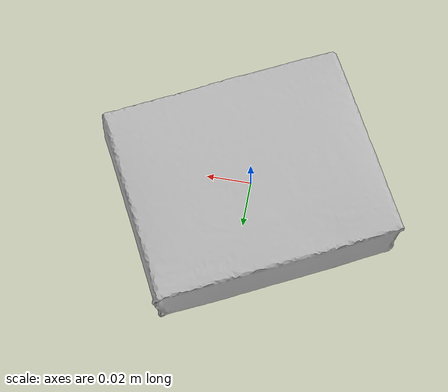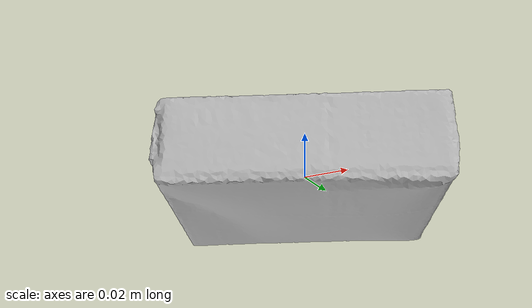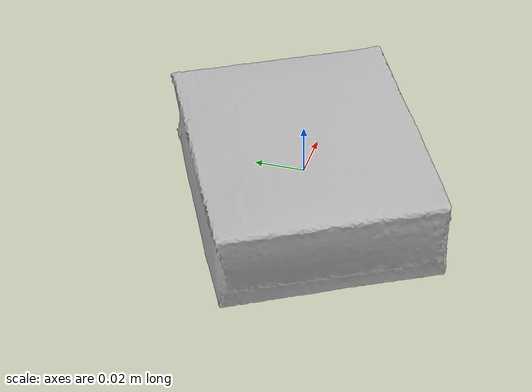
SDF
<?xml version="1.0" ?>
<sdf version="1.7">
<!--
This SDF file was automatically generated using a template modified
and authored by Jinjian Li. The moment of interia is not supposed to be changed.
-->
    <model name="obj_000007">
      <pose>0.0 0.0 0.0 0.0 0.0 0.0</pose>
      <link name="link">
        <inertial>
          <inertia>
           <ixx>0.00041564019778250565</ixx>
           <ixy>-7.517938766391038e-05</ixy>
           <ixz>-9.959222326464797e-06</ixz>
           <iyy>0.0005182271503578452</iyy>
           <iyz>-3.1438346538566617e-06</iyz>
           <izz>0.0008263445005200397</izz>
          </inertia>
          <mass>0.5124821165462445</mass>
        </inertial>
        <collision name="collision">
          <geometry>
            <mesh>
             <uri>obj_000007.obj</uri>
             <scale>1 1 1</scale>
            </mesh>
          </geometry>
        </collision>

        <visual name="visual">
          <geometry>
            <mesh>
             <uri>obj_000007.obj</uri>
             <scale>1 1 1</scale>
            </mesh>
          </geometry>
        </visual>
      </link>
    </model>
</sdf>
